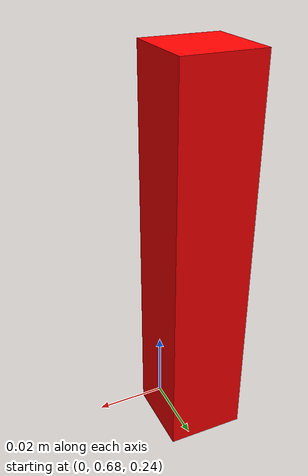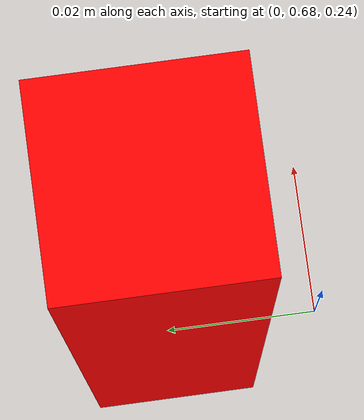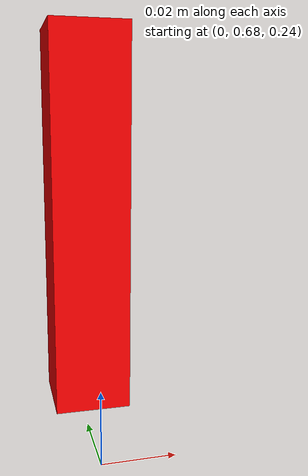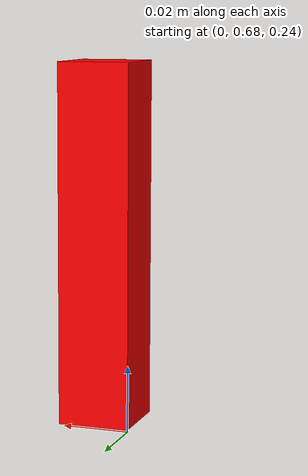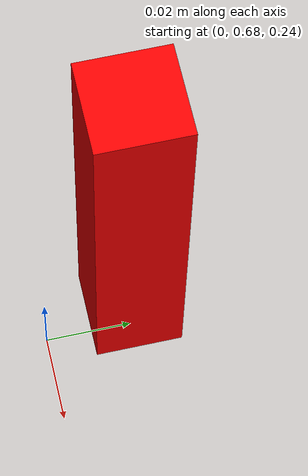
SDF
<?xml version="1.0" ?>
<sdf version="1.6">
  <model name="test_box">
    <static>false</static>
    <pose>0.0 0.7 0.3 0 0 0</pose>
    <link name="box_link">
      <collision name="collision">
        <geometry>
          <box><size>0.02 0.02 0.1</size></box>
        </geometry>
      </collision>
      <visual name="visual">
        <geometry>
          <box><size>0.02 0.02 0.1</size></box>
        </geometry>
        <material><ambient>1 0 0 1</ambient></material>
      </visual>
      <inertial><mass>1.0</mass></inertial>
    </link>
  </model>
</sdf>
